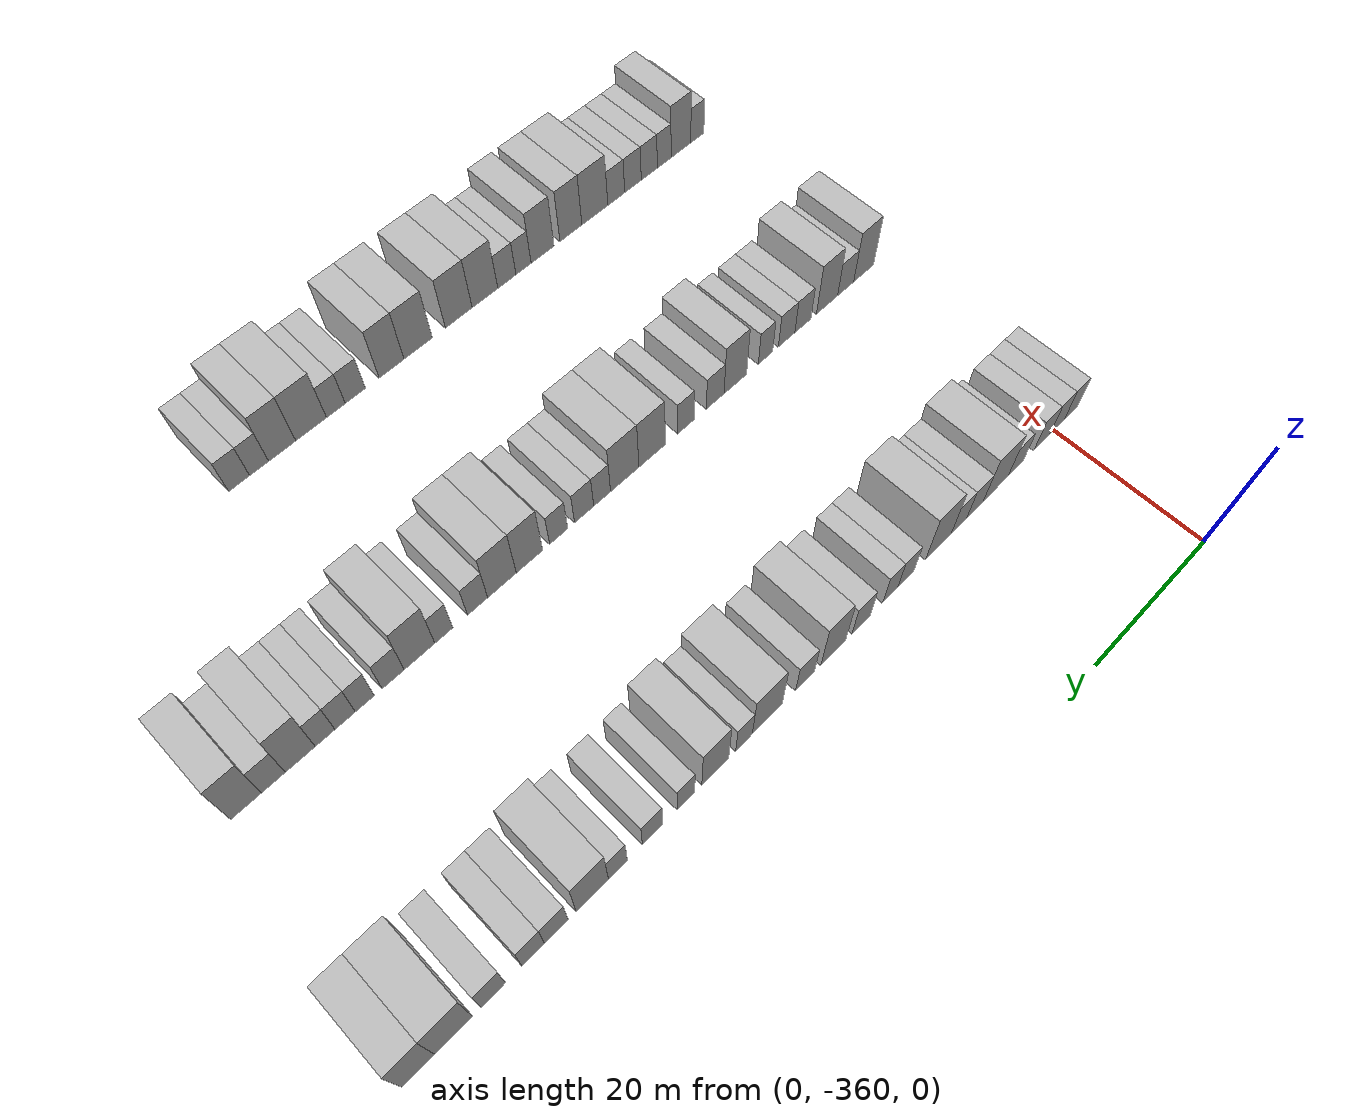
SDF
<sdf version="1.6">
 <world name="default">
  <model name="building_25">
   <static>1</static>
   <pose>25.0000 -363.0989 0 0.000000 0.000000 0.000000</pose>
   <link name="link">
    <pose>0 0 3.00 0 0 0</pose>
    <collision name="collision"><geometry><box><size>10.0000 2.5124 6.0000</size></box></geometry></collision>
    <visual name="visual">
     <cast_shadows>0</cast_shadows>
     <geometry><box><size>10.0000 2.5124 6.0000</size></box></geometry>
     <material>
      <script>
       <uri>model://HANNAS_wall/materials/scripts</uri>
       <uri>model://HANNAS_wall/materials/textures</uri>
       <name>vrc/HANNAS_wall</name>
      </script>
     </material>
    </visual>
   </link>
  </model>
  <model name="building_26">
   <static>1</static>
   <pose>25.0000 -360.4724 0 0.000000 0.000000 0.000000</pose>
   <link name="link">
    <pose>0 0 3.00 0 0 0</pose>
    <collision name="collision"><geometry><box><size>10.0000 2.7406 6.0000</size></box></geometry></collision>
    <visual name="visual">
     <cast_shadows>0</cast_shadows>
     <geometry><box><size>10.0000 2.7406 6.0000</size></box></geometry>
     <material>
      <script>
       <uri>model://HANNAS_wall/materials/scripts</uri>
       <uri>model://HANNAS_wall/materials/textures</uri>
       <name>vrc/HANNAS_wall</name>
      </script>
     </material>
    </visual>
   </link>
  </model>
  <model name="building_27">
   <static>1</static>
   <pose>25.0000 -357.6476 0 0.000000 0.000000 0.000000</pose>
   <link name="link">
    <pose>0 0 3.00 0 0 0</pose>
    <collision name="collision"><geometry><box><size>10.0000 2.9092 6.0000</size></box></geometry></collision>
    <visual name="visual">
     <cast_shadows>0</cast_shadows>
     <geometry><box><size>10.0000 2.9092 6.0000</size></box></geometry>
     <material>
      <script>
       <uri>model://HANNAS_wall/materials/scripts</uri>
       <uri>model://HANNAS_wall/materials/textures</uri>
       <name>vrc/HANNAS_wall</name>
      </script>
     </material>
    </visual>
   </link>
  </model>
  <model name="building_28">
   <static>1</static>
   <pose>25.0000 -352.8219 0 0.000000 0.000000 0.000000</pose>
   <link name="link">
    <pose>0 0 3.00 0 0 0</pose>
    <collision name="collision"><geometry><box><size>10.0000 2.7422 6.0000</size></box></geometry></collision>
    <visual name="visual">
     <cast_shadows>0</cast_shadows>
     <geometry><box><size>10.0000 2.7422 6.0000</size></box></geometry>
     <material>
      <script>
       <uri>model://HANNAS_wall/materials/scripts</uri>
       <uri>model://HANNAS_wall/materials/textures</uri>
       <name>vrc/HANNAS_wall</name>
      </script>
     </material>
    </visual>
   </link>
  </model>
  <model name="building_29">
   <static>1</static>
   <pose>25.0000 -349.2407 0 0.000000 0.000000 0.000000</pose>
   <link name="link">
    <pose>0 0 4.50 0 0 0</pose>
    <collision name="collision"><geometry><box><size>10.0000 4.4202 9.0000</size></box></geometry></collision>
    <visual name="visual">
     <cast_shadows>0</cast_shadows>
     <geometry><box><size>10.0000 4.4202 9.0000</size></box></geometry>
     <material>
      <script>
       <uri>model://HANNAS_wall/materials/scripts</uri>
       <uri>model://HANNAS_wall/materials/textures</uri>
       <name>vrc/HANNAS_wall</name>
      </script>
     </material>
    </visual>
   </link>
  </model>
  <model name="building_30">
   <static>1</static>
   <pose>25.0000 -345.5787 0 0.000000 0.000000 0.000000</pose>
   <link name="link">
    <pose>0 0 3.00 0 0 0</pose>
    <collision name="collision"><geometry><box><size>10.0000 2.9037 6.0000</size></box></geometry></collision>
    <visual name="visual">
     <cast_shadows>0</cast_shadows>
     <geometry><box><size>10.0000 2.9037 6.0000</size></box></geometry>
     <material>
      <script>
       <uri>model://HANNAS_wall/materials/scripts</uri>
       <uri>model://HANNAS_wall/materials/textures</uri>
       <name>vrc/HANNAS_wall</name>
      </script>
     </material>
    </visual>
   </link>
  </model>
  <model name="building_31">
   <static>1</static>
   <pose>25.0000 -342.7855 0 0.000000 0.000000 0.000000</pose>
   <link name="link">
    <pose>0 0 3.00 0 0 0</pose>
    <collision name="collision"><geometry><box><size>10.0000 2.6828 6.0000</size></box></geometry></collision>
    <visual name="visual">
     <cast_shadows>0</cast_shadows>
     <geometry><box><size>10.0000 2.6828 6.0000</size></box></geometry>
     <material>
      <script>
       <uri>model://HANNAS_wall/materials/scripts</uri>
       <uri>model://HANNAS_wall/materials/textures</uri>
       <name>vrc/HANNAS_wall</name>
      </script>
     </material>
    </visual>
   </link>
  </model>
  <model name="building_32">
   <static>1</static>
   <pose>25.0000 -339.2636 0 0.000000 0.000000 0.000000</pose>
   <link name="link">
    <pose>0 0 4.50 0 0 0</pose>
    <collision name="collision"><geometry><box><size>10.0000 4.3609 9.0000</size></box></geometry></collision>
    <visual name="visual">
     <cast_shadows>0</cast_shadows>
     <geometry><box><size>10.0000 4.3609 9.0000</size></box></geometry>
     <material>
      <script>
       <uri>model://HANNAS_wall/materials/scripts</uri>
       <uri>model://HANNAS_wall/materials/textures</uri>
       <name>vrc/HANNAS_wall</name>
      </script>
     </material>
    </visual>
   </link>
  </model>
  <model name="building_33">
   <static>1</static>
   <pose>25.0000 -333.7542 0 0.000000 0.000000 0.000000</pose>
   <link name="link">
    <pose>0 0 3.00 0 0 0</pose>
    <collision name="collision"><geometry><box><size>10.0000 2.6578 6.0000</size></box></geometry></collision>
    <visual name="visual">
     <cast_shadows>0</cast_shadows>
     <geometry><box><size>10.0000 2.6578 6.0000</size></box></geometry>
     <material>
      <script>
       <uri>model://HANNAS_wall/materials/scripts</uri>
       <uri>model://HANNAS_wall/materials/textures</uri>
       <name>vrc/HANNAS_wall</name>
      </script>
     </material>
    </visual>
   </link>
  </model>
  <model name="building_34">
   <static>1</static>
   <pose>25.0000 -331.2030 0 0.000000 0.000000 0.000000</pose>
   <link name="link">
    <pose>0 0 3.00 0 0 0</pose>
    <collision name="collision"><geometry><box><size>10.0000 2.4448 6.0000</size></box></geometry></collision>
    <visual name="visual">
     <cast_shadows>0</cast_shadows>
     <geometry><box><size>10.0000 2.4448 6.0000</size></box></geometry>
     <material>
      <script>
       <uri>model://HANNAS_wall/materials/scripts</uri>
       <uri>model://HANNAS_wall/materials/textures</uri>
       <name>vrc/HANNAS_wall</name>
      </script>
     </material>
    </visual>
   </link>
  </model>
  <model name="building_35">
   <static>1</static>
   <pose>25.0000 -326.5201 0 0.000000 0.000000 0.000000</pose>
   <link name="link">
    <pose>0 0 3.00 0 0 0</pose>
    <collision name="collision"><geometry><box><size>10.0000 2.9210 6.0000</size></box></geometry></collision>
    <visual name="visual">
     <cast_shadows>0</cast_shadows>
     <geometry><box><size>10.0000 2.9210 6.0000</size></box></geometry>
     <material>
      <script>
       <uri>model://HANNAS_wall/materials/scripts</uri>
       <uri>model://HANNAS_wall/materials/textures</uri>
       <name>vrc/HANNAS_wall</name>
      </script>
     </material>
    </visual>
   </link>
  </model>
  <model name="building_36">
   <static>1</static>
   <pose>25.0000 -322.1292 0 0.000000 0.000000 0.000000</pose>
   <link name="link">
    <pose>0 0 4.50 0 0 0</pose>
    <collision name="collision"><geometry><box><size>10.0000 3.8609 9.0000</size></box></geometry></collision>
    <visual name="visual">
     <cast_shadows>0</cast_shadows>
     <geometry><box><size>10.0000 3.8609 9.0000</size></box></geometry>
     <material>
      <script>
       <uri>model://HANNAS_wall/materials/scripts</uri>
       <uri>model://HANNAS_wall/materials/textures</uri>
       <name>vrc/HANNAS_wall</name>
      </script>
     </material>
    </visual>
   </link>
  </model>
  <model name="building_37">
   <static>1</static>
   <pose>25.0000 -317.7645 0 0.000000 0.000000 0.000000</pose>
   <link name="link">
    <pose>0 0 3.00 0 0 0</pose>
    <collision name="collision"><geometry><box><size>10.0000 2.8685 6.0000</size></box></geometry></collision>
    <visual name="visual">
     <cast_shadows>0</cast_shadows>
     <geometry><box><size>10.0000 2.8685 6.0000</size></box></geometry>
     <material>
      <script>
       <uri>model://HANNAS_wall/materials/scripts</uri>
       <uri>model://HANNAS_wall/materials/textures</uri>
       <name>vrc/HANNAS_wall</name>
      </script>
     </material>
    </visual>
   </link>
  </model>
  <model name="building_38">
   <static>1</static>
   <pose>25.0000 -312.1129 0 0.000000 0.000000 0.000000</pose>
   <link name="link">
    <pose>0 0 4.50 0 0 0</pose>
    <collision name="collision"><geometry><box><size>10.0000 4.4347 9.0000</size></box></geometry></collision>
    <visual name="visual">
     <cast_shadows>0</cast_shadows>
     <geometry><box><size>10.0000 4.4347 9.0000</size></box></geometry>
     <material>
      <script>
       <uri>model://HANNAS_wall/materials/scripts</uri>
       <uri>model://HANNAS_wall/materials/textures</uri>
       <name>vrc/HANNAS_wall</name>
      </script>
     </material>
    </visual>
   </link>
  </model>
  <model name="building_39">
   <static>1</static>
   <pose>25.0000 -308.6910 0 0.000000 0.000000 0.000000</pose>
   <link name="link">
    <pose>0 0 3.00 0 0 0</pose>
    <collision name="collision"><geometry><box><size>10.0000 2.4089 6.0000</size></box></geometry></collision>
    <visual name="visual">
     <cast_shadows>0</cast_shadows>
     <geometry><box><size>10.0000 2.4089 6.0000</size></box></geometry>
     <material>
      <script>
       <uri>model://HANNAS_wall/materials/scripts</uri>
       <uri>model://HANNAS_wall/materials/textures</uri>
       <name>vrc/HANNAS_wall</name>
      </script>
     </material>
    </visual>
   </link>
  </model>
  <model name="building_40">
   <static>1</static>
   <pose>25.0000 -304.5818 0 0.000000 0.000000 0.000000</pose>
   <link name="link">
    <pose>0 0 4.50 0 0 0</pose>
    <collision name="collision"><geometry><box><size>10.0000 3.8096 9.0000</size></box></geometry></collision>
    <visual name="visual">
     <cast_shadows>0</cast_shadows>
     <geometry><box><size>10.0000 3.8096 9.0000</size></box></geometry>
     <material>
      <script>
       <uri>model://HANNAS_wall/materials/scripts</uri>
       <uri>model://HANNAS_wall/materials/textures</uri>
       <name>vrc/HANNAS_wall</name>
      </script>
     </material>
    </visual>
   </link>
  </model>
  <model name="building_41">
   <static>1</static>
   <pose>25.0000 -300.4751 0 0.000000 0.000000 0.000000</pose>
   <link name="link">
    <pose>0 0 3.00 0 0 0</pose>
    <collision name="collision"><geometry><box><size>10.0000 2.4038 6.0000</size></box></geometry></collision>
    <visual name="visual">
     <cast_shadows>0</cast_shadows>
     <geometry><box><size>10.0000 2.4038 6.0000</size></box></geometry>
     <material>
      <script>
       <uri>model://HANNAS_wall/materials/scripts</uri>
       <uri>model://HANNAS_wall/materials/textures</uri>
       <name>vrc/HANNAS_wall</name>
      </script>
     </material>
    </visual>
   </link>
  </model>
  <model name="building_42">
   <static>1</static>
   <pose>25.0000 -295.9057 0 0.000000 0.000000 0.000000</pose>
   <link name="link">
    <pose>0 0 3.00 0 0 0</pose>
    <collision name="collision"><geometry><box><size>10.0000 2.7350 6.0000</size></box></geometry></collision>
    <visual name="visual">
     <cast_shadows>0</cast_shadows>
     <geometry><box><size>10.0000 2.7350 6.0000</size></box></geometry>
     <material>
      <script>
       <uri>model://HANNAS_wall/materials/scripts</uri>
       <uri>model://HANNAS_wall/materials/textures</uri>
       <name>vrc/HANNAS_wall</name>
      </script>
     </material>
    </visual>
   </link>
  </model>
  <model name="building_43">
   <static>1</static>
   <pose>25.0000 -291.2968 0 0.000000 0.000000 0.000000</pose>
   <link name="link">
    <pose>0 0 3.00 0 0 0</pose>
    <collision name="collision"><geometry><box><size>10.0000 2.4828 6.0000</size></box></geometry></collision>
    <visual name="visual">
     <cast_shadows>0</cast_shadows>
     <geometry><box><size>10.0000 2.4828 6.0000</size></box></geometry>
     <material>
      <script>
       <uri>model://HANNAS_wall/materials/scripts</uri>
       <uri>model://HANNAS_wall/materials/textures</uri>
       <name>vrc/HANNAS_wall</name>
      </script>
     </material>
    </visual>
   </link>
  </model>
  <model name="building_44">
   <static>1</static>
   <pose>25.0000 -287.9706 0 0.000000 0.000000 0.000000</pose>
   <link name="link">
    <pose>0 0 4.50 0 0 0</pose>
    <collision name="collision"><geometry><box><size>10.0000 4.1696 9.0000</size></box></geometry></collision>
    <visual name="visual">
     <cast_shadows>0</cast_shadows>
     <geometry><box><size>10.0000 4.1696 9.0000</size></box></geometry>
     <material>
      <script>
       <uri>model://HANNAS_wall/materials/scripts</uri>
       <uri>model://HANNAS_wall/materials/textures</uri>
       <name>vrc/HANNAS_wall</name>
      </script>
     </material>
    </visual>
   </link>
  </model>
  <model name="building_45">
   <static>1</static>
   <pose>25.0000 -283.3919 0 0.000000 0.000000 0.000000</pose>
   <link name="link">
    <pose>0 0 3.00 0 0 0</pose>
    <collision name="collision"><geometry><box><size>10.0000 2.9878 6.0000</size></box></geometry></collision>
    <visual name="visual">
     <cast_shadows>0</cast_shadows>
     <geometry><box><size>10.0000 2.9878 6.0000</size></box></geometry>
     <material>
      <script>
       <uri>model://HANNAS_wall/materials/scripts</uri>
       <uri>model://HANNAS_wall/materials/textures</uri>
       <name>vrc/HANNAS_wall</name>
      </script>
     </material>
    </visual>
   </link>
  </model>
  <model name="building_46">
   <static>1</static>
   <pose>25.0000 -280.5077 0 0.000000 0.000000 0.000000</pose>
   <link name="link">
    <pose>0 0 3.00 0 0 0</pose>
    <collision name="collision"><geometry><box><size>10.0000 2.7807 6.0000</size></box></geometry></collision>
    <visual name="visual">
     <cast_shadows>0</cast_shadows>
     <geometry><box><size>10.0000 2.7807 6.0000</size></box></geometry>
     <material>
      <script>
       <uri>model://HANNAS_wall/materials/scripts</uri>
       <uri>model://HANNAS_wall/materials/textures</uri>
       <name>vrc/HANNAS_wall</name>
      </script>
     </material>
    </visual>
   </link>
  </model>
  <model name="building_47">
   <static>1</static>
   <pose>25.0000 -275.6403 0 0.000000 0.000000 0.000000</pose>
   <link name="link">
    <pose>0 0 3.00 0 0 0</pose>
    <collision name="collision"><geometry><box><size>10.0000 2.9541 6.0000</size></box></geometry></collision>
    <visual name="visual">
     <cast_shadows>0</cast_shadows>
     <geometry><box><size>10.0000 2.9541 6.0000</size></box></geometry>
     <material>
      <script>
       <uri>model://HANNAS_wall/materials/scripts</uri>
       <uri>model://HANNAS_wall/materials/textures</uri>
       <name>vrc/HANNAS_wall</name>
      </script>
     </material>
    </visual>
   </link>
  </model>
  <model name="building_48">
   <static>1</static>
   <pose>25.0000 -270.9553 0 0.000000 0.000000 0.000000</pose>
   <link name="link">
    <pose>0 0 4.50 0 0 0</pose>
    <collision name="collision"><geometry><box><size>10.0000 4.4160 9.0000</size></box></geometry></collision>
    <visual name="visual">
     <cast_shadows>0</cast_shadows>
     <geometry><box><size>10.0000 4.4160 9.0000</size></box></geometry>
     <material>
      <script>
       <uri>model://HANNAS_wall/materials/scripts</uri>
       <uri>model://HANNAS_wall/materials/textures</uri>
       <name>vrc/HANNAS_wall</name>
      </script>
     </material>
    </visual>
   </link>
  </model>
  <model name="building_49">
   <static>1</static>
   <pose>25.0000 -266.8858 0 0.000000 0.000000 0.000000</pose>
   <link name="link">
    <pose>0 0 4.50 0 0 0</pose>
    <collision name="collision"><geometry><box><size>10.0000 3.7229 9.0000</size></box></geometry></collision>
    <visual name="visual">
     <cast_shadows>0</cast_shadows>
     <geometry><box><size>10.0000 3.7229 9.0000</size></box></geometry>
     <material>
      <script>
       <uri>model://HANNAS_wall/materials/scripts</uri>
       <uri>model://HANNAS_wall/materials/textures</uri>
       <name>vrc/HANNAS_wall</name>
      </script>
     </material>
    </visual>
   </link>
  </model>
  <model name="building_251">
   <static>1</static>
   <pose>55.0000 -361.8020 0 0.000000 0.000000 0.000000</pose>
   <link name="link">
    <pose>0 0 4.50 0 0 0</pose>
    <collision name="collision"><geometry><box><size>10.0000 3.7122 9.0000</size></box></geometry></collision>
    <visual name="visual">
     <cast_shadows>0</cast_shadows>
     <geometry><box><size>10.0000 3.7122 9.0000</size></box></geometry>
     <material>
      <script>
       <uri>model://HANNAS_wall/materials/scripts</uri>
       <uri>model://HANNAS_wall/materials/textures</uri>
       <name>vrc/HANNAS_wall</name>
      </script>
     </material>
    </visual>
   </link>
  </model>
  <model name="building_252">
   <static>1</static>
   <pose>55.0000 -358.4733 0 0.000000 0.000000 0.000000</pose>
   <link name="link">
    <pose>0 0 3.00 0 0 0</pose>
    <collision name="collision"><geometry><box><size>10.0000 2.9451 6.0000</size></box></geometry></collision>
    <visual name="visual">
     <cast_shadows>0</cast_shadows>
     <geometry><box><size>10.0000 2.9451 6.0000</size></box></geometry>
     <material>
      <script>
       <uri>model://HANNAS_wall/materials/scripts</uri>
       <uri>model://HANNAS_wall/materials/textures</uri>
       <name>vrc/HANNAS_wall</name>
      </script>
     </material>
    </visual>
   </link>
  </model>
  <model name="building_253">
   <static>1</static>
   <pose>55.0000 -355.0867 0 0.000000 0.000000 0.000000</pose>
   <link name="link">
    <pose>0 0 4.50 0 0 0</pose>
    <collision name="collision"><geometry><box><size>10.0000 3.8280 9.0000</size></box></geometry></collision>
    <visual name="visual">
     <cast_shadows>0</cast_shadows>
     <geometry><box><size>10.0000 3.8280 9.0000</size></box></geometry>
     <material>
      <script>
       <uri>model://HANNAS_wall/materials/scripts</uri>
       <uri>model://HANNAS_wall/materials/textures</uri>
       <name>vrc/HANNAS_wall</name>
      </script>
     </material>
    </visual>
   </link>
  </model>
  <model name="building_254">
   <static>1</static>
   <pose>55.0000 -350.7453 0 0.000000 0.000000 0.000000</pose>
   <link name="link">
    <pose>0 0 3.00 0 0 0</pose>
    <collision name="collision"><geometry><box><size>10.0000 2.8549 6.0000</size></box></geometry></collision>
    <visual name="visual">
     <cast_shadows>0</cast_shadows>
     <geometry><box><size>10.0000 2.8549 6.0000</size></box></geometry>
     <material>
      <script>
       <uri>model://HANNAS_wall/materials/scripts</uri>
       <uri>model://HANNAS_wall/materials/textures</uri>
       <name>vrc/HANNAS_wall</name>
      </script>
     </material>
    </visual>
   </link>
  </model>
  <model name="building_255">
   <static>1</static>
   <pose>55.0000 -347.8775 0 0.000000 0.000000 0.000000</pose>
   <link name="link">
    <pose>0 0 3.00 0 0 0</pose>
    <collision name="collision"><geometry><box><size>10.0000 2.8807 6.0000</size></box></geometry></collision>
    <visual name="visual">
     <cast_shadows>0</cast_shadows>
     <geometry><box><size>10.0000 2.8807 6.0000</size></box></geometry>
     <material>
      <script>
       <uri>model://HANNAS_wall/materials/scripts</uri>
       <uri>model://HANNAS_wall/materials/textures</uri>
       <name>vrc/HANNAS_wall</name>
      </script>
     </material>
    </visual>
   </link>
  </model>
  <model name="building_256">
   <static>1</static>
   <pose>55.0000 -344.2051 0 0.000000 0.000000 0.000000</pose>
   <link name="link">
    <pose>0 0 3.00 0 0 0</pose>
    <collision name="collision"><geometry><box><size>10.0000 2.4642 6.0000</size></box></geometry></collision>
    <visual name="visual">
     <cast_shadows>0</cast_shadows>
     <geometry><box><size>10.0000 2.4642 6.0000</size></box></geometry>
     <material>
      <script>
       <uri>model://HANNAS_wall/materials/scripts</uri>
       <uri>model://HANNAS_wall/materials/textures</uri>
       <name>vrc/HANNAS_wall</name>
      </script>
     </material>
    </visual>
   </link>
  </model>
  <model name="building_257">
   <static>1</static>
   <pose>55.0000 -339.0766 0 0.000000 0.000000 0.000000</pose>
   <link name="link">
    <pose>0 0 4.50 0 0 0</pose>
    <collision name="collision"><geometry><box><size>10.0000 3.7927 9.0000</size></box></geometry></collision>
    <visual name="visual">
     <cast_shadows>0</cast_shadows>
     <geometry><box><size>10.0000 3.7927 9.0000</size></box></geometry>
     <material>
      <script>
       <uri>model://HANNAS_wall/materials/scripts</uri>
       <uri>model://HANNAS_wall/materials/textures</uri>
       <name>vrc/HANNAS_wall</name>
      </script>
     </material>
    </visual>
   </link>
  </model>
  <model name="building_258">
   <static>1</static>
   <pose>55.0000 -335.7118 0 0.000000 0.000000 0.000000</pose>
   <link name="link">
    <pose>0 0 3.00 0 0 0</pose>
    <collision name="collision"><geometry><box><size>10.0000 2.9369 6.0000</size></box></geometry></collision>
    <visual name="visual">
     <cast_shadows>0</cast_shadows>
     <geometry><box><size>10.0000 2.9369 6.0000</size></box></geometry>
     <material>
      <script>
       <uri>model://HANNAS_wall/materials/scripts</uri>
       <uri>model://HANNAS_wall/materials/textures</uri>
       <name>vrc/HANNAS_wall</name>
      </script>
     </material>
    </visual>
   </link>
  </model>
  <model name="building_259">
   <static>1</static>
   <pose>55.0000 -330.9267 0 0.000000 0.000000 0.000000</pose>
   <link name="link">
    <pose>0 0 3.00 0 0 0</pose>
    <collision name="collision"><geometry><box><size>10.0000 2.6333 6.0000</size></box></geometry></collision>
    <visual name="visual">
     <cast_shadows>0</cast_shadows>
     <geometry><box><size>10.0000 2.6333 6.0000</size></box></geometry>
     <material>
      <script>
       <uri>model://HANNAS_wall/materials/scripts</uri>
       <uri>model://HANNAS_wall/materials/textures</uri>
       <name>vrc/HANNAS_wall</name>
      </script>
     </material>
    </visual>
   </link>
  </model>
  <model name="building_260">
   <static>1</static>
   <pose>55.0000 -325.5233 0 0.000000 0.000000 0.000000</pose>
   <link name="link">
    <pose>0 0 4.50 0 0 0</pose>
    <collision name="collision"><geometry><box><size>10.0000 4.1735 9.0000</size></box></geometry></collision>
    <visual name="visual">
     <cast_shadows>0</cast_shadows>
     <geometry><box><size>10.0000 4.1735 9.0000</size></box></geometry>
     <material>
      <script>
       <uri>model://HANNAS_wall/materials/scripts</uri>
       <uri>model://HANNAS_wall/materials/textures</uri>
       <name>vrc/HANNAS_wall</name>
      </script>
     </material>
    </visual>
   </link>
  </model>
  <model name="building_261">
   <static>1</static>
   <pose>55.0000 -321.2479 0 0.000000 0.000000 0.000000</pose>
   <link name="link">
    <pose>0 0 4.50 0 0 0</pose>
    <collision name="collision"><geometry><box><size>10.0000 4.3774 9.0000</size></box></geometry></collision>
    <visual name="visual">
     <cast_shadows>0</cast_shadows>
     <geometry><box><size>10.0000 4.3774 9.0000</size></box></geometry>
     <material>
      <script>
       <uri>model://HANNAS_wall/materials/scripts</uri>
       <uri>model://HANNAS_wall/materials/textures</uri>
       <name>vrc/HANNAS_wall</name>
      </script>
     </material>
    </visual>
   </link>
  </model>
  <model name="building_262">
   <static>1</static>
   <pose>55.0000 -317.7843 0 0.000000 0.000000 0.000000</pose>
   <link name="link">
    <pose>0 0 3.00 0 0 0</pose>
    <collision name="collision"><geometry><box><size>10.0000 2.5499 6.0000</size></box></geometry></collision>
    <visual name="visual">
     <cast_shadows>0</cast_shadows>
     <geometry><box><size>10.0000 2.5499 6.0000</size></box></geometry>
     <material>
      <script>
       <uri>model://HANNAS_wall/materials/scripts</uri>
       <uri>model://HANNAS_wall/materials/textures</uri>
       <name>vrc/HANNAS_wall</name>
      </script>
     </material>
    </visual>
   </link>
  </model>
  <model name="building_263">
   <static>1</static>
   <pose>55.0000 -315.0691 0 0.000000 0.000000 0.000000</pose>
   <link name="link">
    <pose>0 0 3.00 0 0 0</pose>
    <collision name="collision"><geometry><box><size>10.0000 2.8805 6.0000</size></box></geometry></collision>
    <visual name="visual">
     <cast_shadows>0</cast_shadows>
     <geometry><box><size>10.0000 2.8805 6.0000</size></box></geometry>
     <material>
      <script>
       <uri>model://HANNAS_wall/materials/scripts</uri>
       <uri>model://HANNAS_wall/materials/textures</uri>
       <name>vrc/HANNAS_wall</name>
      </script>
     </material>
    </visual>
   </link>
  </model>
  <model name="building_264">
   <static>1</static>
   <pose>55.0000 -311.2928 0 0.000000 0.000000 0.000000</pose>
   <link name="link">
    <pose>0 0 3.00 0 0 0</pose>
    <collision name="collision"><geometry><box><size>10.0000 2.6720 6.0000</size></box></geometry></collision>
    <visual name="visual">
     <cast_shadows>0</cast_shadows>
     <geometry><box><size>10.0000 2.6720 6.0000</size></box></geometry>
     <material>
      <script>
       <uri>model://HANNAS_wall/materials/scripts</uri>
       <uri>model://HANNAS_wall/materials/textures</uri>
       <name>vrc/HANNAS_wall</name>
      </script>
     </material>
    </visual>
   </link>
  </model>
  <model name="building_265">
   <static>1</static>
   <pose>55.0000 -307.0521 0 0.000000 0.000000 0.000000</pose>
   <link name="link">
    <pose>0 0 4.50 0 0 0</pose>
    <collision name="collision"><geometry><box><size>10.0000 3.8093 9.0000</size></box></geometry></collision>
    <visual name="visual">
     <cast_shadows>0</cast_shadows>
     <geometry><box><size>10.0000 3.8093 9.0000</size></box></geometry>
     <material>
      <script>
       <uri>model://HANNAS_wall/materials/scripts</uri>
       <uri>model://HANNAS_wall/materials/textures</uri>
       <name>vrc/HANNAS_wall</name>
      </script>
     </material>
    </visual>
   </link>
  </model>
  <model name="building_266">
   <static>1</static>
   <pose>55.0000 -303.1303 0 0.000000 0.000000 0.000000</pose>
   <link name="link">
    <pose>0 0 4.50 0 0 0</pose>
    <collision name="collision"><geometry><box><size>10.0000 4.0344 9.0000</size></box></geometry></collision>
    <visual name="visual">
     <cast_shadows>0</cast_shadows>
     <geometry><box><size>10.0000 4.0344 9.0000</size></box></geometry>
     <material>
      <script>
       <uri>model://HANNAS_wall/materials/scripts</uri>
       <uri>model://HANNAS_wall/materials/textures</uri>
       <name>vrc/HANNAS_wall</name>
      </script>
     </material>
    </visual>
   </link>
  </model>
  <model name="building_267">
   <static>1</static>
   <pose>55.0000 -299.7121 0 0.000000 0.000000 0.000000</pose>
   <link name="link">
    <pose>0 0 3.00 0 0 0</pose>
    <collision name="collision"><geometry><box><size>10.0000 2.8021 6.0000</size></box></geometry></collision>
    <visual name="visual">
     <cast_shadows>0</cast_shadows>
     <geometry><box><size>10.0000 2.8021 6.0000</size></box></geometry>
     <material>
      <script>
       <uri>model://HANNAS_wall/materials/scripts</uri>
       <uri>model://HANNAS_wall/materials/textures</uri>
       <name>vrc/HANNAS_wall</name>
      </script>
     </material>
    </visual>
   </link>
  </model>
  <model name="building_268">
   <static>1</static>
   <pose>55.0000 -295.0896 0 0.000000 0.000000 0.000000</pose>
   <link name="link">
    <pose>0 0 3.00 0 0 0</pose>
    <collision name="collision"><geometry><box><size>10.0000 2.4429 6.0000</size></box></geometry></collision>
    <visual name="visual">
     <cast_shadows>0</cast_shadows>
     <geometry><box><size>10.0000 2.4429 6.0000</size></box></geometry>
     <material>
      <script>
       <uri>model://HANNAS_wall/materials/scripts</uri>
       <uri>model://HANNAS_wall/materials/textures</uri>
       <name>vrc/HANNAS_wall</name>
      </script>
     </material>
    </visual>
   </link>
  </model>
  <model name="building_269">
   <static>1</static>
   <pose>55.0000 -291.8243 0 0.000000 0.000000 0.000000</pose>
   <link name="link">
    <pose>0 0 4.50 0 0 0</pose>
    <collision name="collision"><geometry><box><size>10.0000 4.0877 9.0000</size></box></geometry></collision>
    <visual name="visual">
     <cast_shadows>0</cast_shadows>
     <geometry><box><size>10.0000 4.0877 9.0000</size></box></geometry>
     <material>
      <script>
       <uri>model://HANNAS_wall/materials/scripts</uri>
       <uri>model://HANNAS_wall/materials/textures</uri>
       <name>vrc/HANNAS_wall</name>
      </script>
     </material>
    </visual>
   </link>
  </model>
  <model name="building_270">
   <static>1</static>
   <pose>55.0000 -288.3421 0 0.000000 0.000000 0.000000</pose>
   <link name="link">
    <pose>0 0 3.00 0 0 0</pose>
    <collision name="collision"><geometry><box><size>10.0000 2.8767 6.0000</size></box></geometry></collision>
    <visual name="visual">
     <cast_shadows>0</cast_shadows>
     <geometry><box><size>10.0000 2.8767 6.0000</size></box></geometry>
     <material>
      <script>
       <uri>model://HANNAS_wall/materials/scripts</uri>
       <uri>model://HANNAS_wall/materials/textures</uri>
       <name>vrc/HANNAS_wall</name>
      </script>
     </material>
    </visual>
   </link>
  </model>
  <model name="building_271">
   <static>1</static>
   <pose>55.0000 -284.6823 0 0.000000 0.000000 0.000000</pose>
   <link name="link">
    <pose>0 0 3.00 0 0 0</pose>
    <collision name="collision"><geometry><box><size>10.0000 2.4428 6.0000</size></box></geometry></collision>
    <visual name="visual">
     <cast_shadows>0</cast_shadows>
     <geometry><box><size>10.0000 2.4428 6.0000</size></box></geometry>
     <material>
      <script>
       <uri>model://HANNAS_wall/materials/scripts</uri>
       <uri>model://HANNAS_wall/materials/textures</uri>
       <name>vrc/HANNAS_wall</name>
      </script>
     </material>
    </visual>
   </link>
  </model>
  <model name="building_272">
   <static>1</static>
   <pose>55.0000 -282.1756 0 0.000000 0.000000 0.000000</pose>
   <link name="link">
    <pose>0 0 3.00 0 0 0</pose>
    <collision name="collision"><geometry><box><size>10.0000 2.5706 6.0000</size></box></geometry></collision>
    <visual name="visual">
     <cast_shadows>0</cast_shadows>
     <geometry><box><size>10.0000 2.5706 6.0000</size></box></geometry>
     <material>
      <script>
       <uri>model://HANNAS_wall/materials/scripts</uri>
       <uri>model://HANNAS_wall/materials/textures</uri>
       <name>vrc/HANNAS_wall</name>
      </script>
     </material>
    </visual>
   </link>
  </model>
  <model name="building_273">
   <static>1</static>
   <pose>55.0000 -279.6632 0 0.000000 0.000000 0.000000</pose>
   <link name="link">
    <pose>0 0 3.00 0 0 0</pose>
    <collision name="collision"><geometry><box><size>10.0000 2.4544 6.0000</size></box></geometry></collision>
    <visual name="visual">
     <cast_shadows>0</cast_shadows>
     <geometry><box><size>10.0000 2.4544 6.0000</size></box></geometry>
     <material>
      <script>
       <uri>model://HANNAS_wall/materials/scripts</uri>
       <uri>model://HANNAS_wall/materials/textures</uri>
       <name>vrc/HANNAS_wall</name>
      </script>
     </material>
    </visual>
   </link>
  </model>
  <model name="building_274">
   <static>1</static>
   <pose>55.0000 -276.6070 0 0.000000 0.000000 0.000000</pose>
   <link name="link">
    <pose>0 0 4.50 0 0 0</pose>
    <collision name="collision"><geometry><box><size>10.0000 3.6580 9.0000</size></box></geometry></collision>
    <visual name="visual">
     <cast_shadows>0</cast_shadows>
     <geometry><box><size>10.0000 3.6580 9.0000</size></box></geometry>
     <material>
      <script>
       <uri>model://HANNAS_wall/materials/scripts</uri>
       <uri>model://HANNAS_wall/materials/textures</uri>
       <name>vrc/HANNAS_wall</name>
      </script>
     </material>
    </visual>
   </link>
  </model>
  <model name="building_275">
   <static>1</static>
   <pose>55.0000 -273.3480 0 0.000000 0.000000 0.000000</pose>
   <link name="link">
    <pose>0 0 3.00 0 0 0</pose>
    <collision name="collision"><geometry><box><size>10.0000 2.8601 6.0000</size></box></geometry></collision>
    <visual name="visual">
     <cast_shadows>0</cast_shadows>
     <geometry><box><size>10.0000 2.8601 6.0000</size></box></geometry>
     <material>
      <script>
       <uri>model://HANNAS_wall/materials/scripts</uri>
       <uri>model://HANNAS_wall/materials/textures</uri>
       <name>vrc/HANNAS_wall</name>
      </script>
     </material>
    </visual>
   </link>
  </model>
  <model name="building_276">
   <static>1</static>
   <pose>55.0000 -270.0857 0 0.000000 0.000000 0.000000</pose>
   <link name="link">
    <pose>0 0 4.50 0 0 0</pose>
    <collision name="collision"><geometry><box><size>10.0000 3.6645 9.0000</size></box></geometry></collision>
    <visual name="visual">
     <cast_shadows>0</cast_shadows>
     <geometry><box><size>10.0000 3.6645 9.0000</size></box></geometry>
     <material>
      <script>
       <uri>model://HANNAS_wall/materials/scripts</uri>
       <uri>model://HANNAS_wall/materials/textures</uri>
       <name>vrc/HANNAS_wall</name>
      </script>
     </material>
    </visual>
   </link>
  </model>
  <model name="building_484">
   <static>1</static>
   <pose>85.0000 -363.4680 0 0.000000 0.000000 0.000000</pose>
   <link name="link">
    <pose>0 0 3.00 0 0 0</pose>
    <collision name="collision"><geometry><box><size>10.0000 2.4415 6.0000</size></box></geometry></collision>
    <visual name="visual">
     <cast_shadows>0</cast_shadows>
     <geometry><box><size>10.0000 2.4415 6.0000</size></box></geometry>
     <material>
      <script>
       <uri>model://HANNAS_wall/materials/scripts</uri>
       <uri>model://HANNAS_wall/materials/textures</uri>
       <name>vrc/HANNAS_wall</name>
      </script>
     </material>
    </visual>
   </link>
  </model>
  <model name="building_485">
   <static>1</static>
   <pose>85.0000 -360.4401 0 0.000000 0.000000 0.000000</pose>
   <link name="link">
    <pose>0 0 4.50 0 0 0</pose>
    <collision name="collision"><geometry><box><size>10.0000 3.6145 9.0000</size></box></geometry></collision>
    <visual name="visual">
     <cast_shadows>0</cast_shadows>
     <geometry><box><size>10.0000 3.6145 9.0000</size></box></geometry>
     <material>
      <script>
       <uri>model://HANNAS_wall/materials/scripts</uri>
       <uri>model://HANNAS_wall/materials/textures</uri>
       <name>vrc/HANNAS_wall</name>
      </script>
     </material>
    </visual>
   </link>
  </model>
  <model name="building_486">
   <static>1</static>
   <pose>85.0000 -357.3755 0 0.000000 0.000000 0.000000</pose>
   <link name="link">
    <pose>0 0 3.00 0 0 0</pose>
    <collision name="collision"><geometry><box><size>10.0000 2.5146 6.0000</size></box></geometry></collision>
    <visual name="visual">
     <cast_shadows>0</cast_shadows>
     <geometry><box><size>10.0000 2.5146 6.0000</size></box></geometry>
     <material>
      <script>
       <uri>model://HANNAS_wall/materials/scripts</uri>
       <uri>model://HANNAS_wall/materials/textures</uri>
       <name>vrc/HANNAS_wall</name>
      </script>
     </material>
    </visual>
   </link>
  </model>
  <model name="building_487">
   <static>1</static>
   <pose>85.0000 -354.6719 0 0.000000 0.000000 0.000000</pose>
   <link name="link">
    <pose>0 0 3.00 0 0 0</pose>
    <collision name="collision"><geometry><box><size>10.0000 2.8927 6.0000</size></box></geometry></collision>
    <visual name="visual">
     <cast_shadows>0</cast_shadows>
     <geometry><box><size>10.0000 2.8927 6.0000</size></box></geometry>
     <material>
      <script>
       <uri>model://HANNAS_wall/materials/scripts</uri>
       <uri>model://HANNAS_wall/materials/textures</uri>
       <name>vrc/HANNAS_wall</name>
      </script>
     </material>
    </visual>
   </link>
  </model>
  <model name="building_488">
   <static>1</static>
   <pose>85.0000 -351.7552 0 0.000000 0.000000 0.000000</pose>
   <link name="link">
    <pose>0 0 3.00 0 0 0</pose>
    <collision name="collision"><geometry><box><size>10.0000 2.9407 6.0000</size></box></geometry></collision>
    <visual name="visual">
     <cast_shadows>0</cast_shadows>
     <geometry><box><size>10.0000 2.9407 6.0000</size></box></geometry>
     <material>
      <script>
       <uri>model://HANNAS_wall/materials/scripts</uri>
       <uri>model://HANNAS_wall/materials/textures</uri>
       <name>vrc/HANNAS_wall</name>
      </script>
     </material>
    </visual>
   </link>
  </model>
  <model name="building_489">
   <static>1</static>
   <pose>85.0000 -348.8049 0 0.000000 0.000000 0.000000</pose>
   <link name="link">
    <pose>0 0 3.00 0 0 0</pose>
    <collision name="collision"><geometry><box><size>10.0000 2.9597 6.0000</size></box></geometry></collision>
    <visual name="visual">
     <cast_shadows>0</cast_shadows>
     <geometry><box><size>10.0000 2.9597 6.0000</size></box></geometry>
     <material>
      <script>
       <uri>model://HANNAS_wall/materials/scripts</uri>
       <uri>model://HANNAS_wall/materials/textures</uri>
       <name>vrc/HANNAS_wall</name>
      </script>
     </material>
    </visual>
   </link>
  </model>
  <model name="building_490">
   <static>1</static>
   <pose>85.0000 -345.0760 0 0.000000 0.000000 0.000000</pose>
   <link name="link">
    <pose>0 0 4.50 0 0 0</pose>
    <collision name="collision"><geometry><box><size>10.0000 4.4981 9.0000</size></box></geometry></collision>
    <visual name="visual">
     <cast_shadows>0</cast_shadows>
     <geometry><box><size>10.0000 4.4981 9.0000</size></box></geometry>
     <material>
      <script>
       <uri>model://HANNAS_wall/materials/scripts</uri>
       <uri>model://HANNAS_wall/materials/textures</uri>
       <name>vrc/HANNAS_wall</name>
      </script>
     </material>
    </visual>
   </link>
  </model>
  <model name="building_491">
   <static>1</static>
   <pose>85.0000 -340.9686 0 0.000000 0.000000 0.000000</pose>
   <link name="link">
    <pose>0 0 4.50 0 0 0</pose>
    <collision name="collision"><geometry><box><size>10.0000 3.7166 9.0000</size></box></geometry></collision>
    <visual name="visual">
     <cast_shadows>0</cast_shadows>
     <geometry><box><size>10.0000 3.7166 9.0000</size></box></geometry>
     <material>
      <script>
       <uri>model://HANNAS_wall/materials/scripts</uri>
       <uri>model://HANNAS_wall/materials/textures</uri>
       <name>vrc/HANNAS_wall</name>
      </script>
     </material>
    </visual>
   </link>
  </model>
  <model name="building_492">
   <static>1</static>
   <pose>85.0000 -336.2135 0 0.000000 0.000000 0.000000</pose>
   <link name="link">
    <pose>0 0 4.50 0 0 0</pose>
    <collision name="collision"><geometry><box><size>10.0000 3.7936 9.0000</size></box></geometry></collision>
    <visual name="visual">
     <cast_shadows>0</cast_shadows>
     <geometry><box><size>10.0000 3.7936 9.0000</size></box></geometry>
     <material>
      <script>
       <uri>model://HANNAS_wall/materials/scripts</uri>
       <uri>model://HANNAS_wall/materials/textures</uri>
       <name>vrc/HANNAS_wall</name>
      </script>
     </material>
    </visual>
   </link>
  </model>
  <model name="building_493">
   <static>1</static>
   <pose>85.0000 -333.0740 0 0.000000 0.000000 0.000000</pose>
   <link name="link">
    <pose>0 0 3.00 0 0 0</pose>
    <collision name="collision"><geometry><box><size>10.0000 2.4854 6.0000</size></box></geometry></collision>
    <visual name="visual">
     <cast_shadows>0</cast_shadows>
     <geometry><box><size>10.0000 2.4854 6.0000</size></box></geometry>
     <material>
      <script>
       <uri>model://HANNAS_wall/materials/scripts</uri>
       <uri>model://HANNAS_wall/materials/textures</uri>
       <name>vrc/HANNAS_wall</name>
      </script>
     </material>
    </visual>
   </link>
  </model>
  <model name="building_494">
   <static>1</static>
   <pose>85.0000 -330.3659 0 0.000000 0.000000 0.000000</pose>
   <link name="link">
    <pose>0 0 3.00 0 0 0</pose>
    <collision name="collision"><geometry><box><size>10.0000 2.9308 6.0000</size></box></geometry></collision>
    <visual name="visual">
     <cast_shadows>0</cast_shadows>
     <geometry><box><size>10.0000 2.9308 6.0000</size></box></geometry>
     <material>
      <script>
       <uri>model://HANNAS_wall/materials/scripts</uri>
       <uri>model://HANNAS_wall/materials/textures</uri>
       <name>vrc/HANNAS_wall</name>
      </script>
     </material>
    </visual>
   </link>
  </model>
  <model name="building_495">
   <static>1</static>
   <pose>85.0000 -326.8495 0 0.000000 0.000000 0.000000</pose>
   <link name="link">
    <pose>0 0 4.50 0 0 0</pose>
    <collision name="collision"><geometry><box><size>10.0000 4.1020 9.0000</size></box></geometry></collision>
    <visual name="visual">
     <cast_shadows>0</cast_shadows>
     <geometry><box><size>10.0000 4.1020 9.0000</size></box></geometry>
     <material>
      <script>
       <uri>model://HANNAS_wall/materials/scripts</uri>
       <uri>model://HANNAS_wall/materials/textures</uri>
       <name>vrc/HANNAS_wall</name>
      </script>
     </material>
    </visual>
   </link>
  </model>
  <model name="building_496">
   <static>1</static>
   <pose>85.0000 -322.6966 0 0.000000 0.000000 0.000000</pose>
   <link name="link">
    <pose>0 0 4.50 0 0 0</pose>
    <collision name="collision"><geometry><box><size>10.0000 4.2038 9.0000</size></box></geometry></collision>
    <visual name="visual">
     <cast_shadows>0</cast_shadows>
     <geometry><box><size>10.0000 4.2038 9.0000</size></box></geometry>
     <material>
      <script>
       <uri>model://HANNAS_wall/materials/scripts</uri>
       <uri>model://HANNAS_wall/materials/textures</uri>
       <name>vrc/HANNAS_wall</name>
      </script>
     </material>
    </visual>
   </link>
  </model>
  <model name="building_497">
   <static>1</static>
   <pose>85.0000 -316.4456 0 0.000000 0.000000 0.000000</pose>
   <link name="link">
    <pose>0 0 4.50 0 0 0</pose>
    <collision name="collision"><geometry><box><size>10.0000 4.2981 9.0000</size></box></geometry></collision>
    <visual name="visual">
     <cast_shadows>0</cast_shadows>
     <geometry><box><size>10.0000 4.2981 9.0000</size></box></geometry>
     <material>
      <script>
       <uri>model://HANNAS_wall/materials/scripts</uri>
       <uri>model://HANNAS_wall/materials/textures</uri>
       <name>vrc/HANNAS_wall</name>
      </script>
     </material>
    </visual>
   </link>
  </model>
  <model name="building_498">
   <static>1</static>
   <pose>85.0000 -312.4297 0 0.000000 0.000000 0.000000</pose>
   <link name="link">
    <pose>0 0 4.50 0 0 0</pose>
    <collision name="collision"><geometry><box><size>10.0000 3.7339 9.0000</size></box></geometry></collision>
    <visual name="visual">
     <cast_shadows>0</cast_shadows>
     <geometry><box><size>10.0000 3.7339 9.0000</size></box></geometry>
     <material>
      <script>
       <uri>model://HANNAS_wall/materials/scripts</uri>
       <uri>model://HANNAS_wall/materials/textures</uri>
       <name>vrc/HANNAS_wall</name>
      </script>
     </material>
    </visual>
   </link>
  </model>
  <model name="building_499">
   <static>1</static>
   <pose>85.0000 -307.0923 0 0.000000 0.000000 0.000000</pose>
   <link name="link">
    <pose>0 0 3.00 0 0 0</pose>
    <collision name="collision"><geometry><box><size>10.0000 2.9409 6.0000</size></box></geometry></collision>
    <visual name="visual">
     <cast_shadows>0</cast_shadows>
     <geometry><box><size>10.0000 2.9409 6.0000</size></box></geometry>
     <material>
      <script>
       <uri>model://HANNAS_wall/materials/scripts</uri>
       <uri>model://HANNAS_wall/materials/textures</uri>
       <name>vrc/HANNAS_wall</name>
      </script>
     </material>
    </visual>
   </link>
  </model>
  <model name="building_500">
   <static>1</static>
   <pose>85.0000 -304.2741 0 0.000000 0.000000 0.000000</pose>
   <link name="link">
    <pose>0 0 3.00 0 0 0</pose>
    <collision name="collision"><geometry><box><size>10.0000 2.6955 6.0000</size></box></geometry></collision>
    <visual name="visual">
     <cast_shadows>0</cast_shadows>
     <geometry><box><size>10.0000 2.6955 6.0000</size></box></geometry>
     <material>
      <script>
       <uri>model://HANNAS_wall/materials/scripts</uri>
       <uri>model://HANNAS_wall/materials/textures</uri>
       <name>vrc/HANNAS_wall</name>
      </script>
     </material>
    </visual>
   </link>
  </model>
  <model name="building_501">
   <static>1</static>
   <pose>85.0000 -300.7546 0 0.000000 0.000000 0.000000</pose>
   <link name="link">
    <pose>0 0 4.50 0 0 0</pose>
    <collision name="collision"><geometry><box><size>10.0000 4.3434 9.0000</size></box></geometry></collision>
    <visual name="visual">
     <cast_shadows>0</cast_shadows>
     <geometry><box><size>10.0000 4.3434 9.0000</size></box></geometry>
     <material>
      <script>
       <uri>model://HANNAS_wall/materials/scripts</uri>
       <uri>model://HANNAS_wall/materials/textures</uri>
       <name>vrc/HANNAS_wall</name>
      </script>
     </material>
    </visual>
   </link>
  </model>
  <model name="building_502">
   <static>1</static>
   <pose>85.0000 -296.7008 0 0.000000 0.000000 0.000000</pose>
   <link name="link">
    <pose>0 0 4.50 0 0 0</pose>
    <collision name="collision"><geometry><box><size>10.0000 3.7642 9.0000</size></box></geometry></collision>
    <visual name="visual">
     <cast_shadows>0</cast_shadows>
     <geometry><box><size>10.0000 3.7642 9.0000</size></box></geometry>
     <material>
      <script>
       <uri>model://HANNAS_wall/materials/scripts</uri>
       <uri>model://HANNAS_wall/materials/textures</uri>
       <name>vrc/HANNAS_wall</name>
      </script>
     </material>
    </visual>
   </link>
  </model>
  <model name="building_503">
   <static>1</static>
   <pose>85.0000 -293.5223 0 0.000000 0.000000 0.000000</pose>
   <link name="link">
    <pose>0 0 3.00 0 0 0</pose>
    <collision name="collision"><geometry><box><size>10.0000 2.5928 6.0000</size></box></geometry></collision>
    <visual name="visual">
     <cast_shadows>0</cast_shadows>
     <geometry><box><size>10.0000 2.5928 6.0000</size></box></geometry>
     <material>
      <script>
       <uri>model://HANNAS_wall/materials/scripts</uri>
       <uri>model://HANNAS_wall/materials/textures</uri>
       <name>vrc/HANNAS_wall</name>
      </script>
     </material>
    </visual>
   </link>
  </model>
  <model name="building_504">
   <static>1</static>
   <pose>85.0000 -290.8120 0 0.000000 0.000000 0.000000</pose>
   <link name="link">
    <pose>0 0 3.00 0 0 0</pose>
    <collision name="collision"><geometry><box><size>10.0000 2.8278 6.0000</size></box></geometry></collision>
    <visual name="visual">
     <cast_shadows>0</cast_shadows>
     <geometry><box><size>10.0000 2.8278 6.0000</size></box></geometry>
     <material>
      <script>
       <uri>model://HANNAS_wall/materials/scripts</uri>
       <uri>model://HANNAS_wall/materials/textures</uri>
       <name>vrc/HANNAS_wall</name>
      </script>
     </material>
    </visual>
   </link>
  </model>
 </world>
</sdf>
